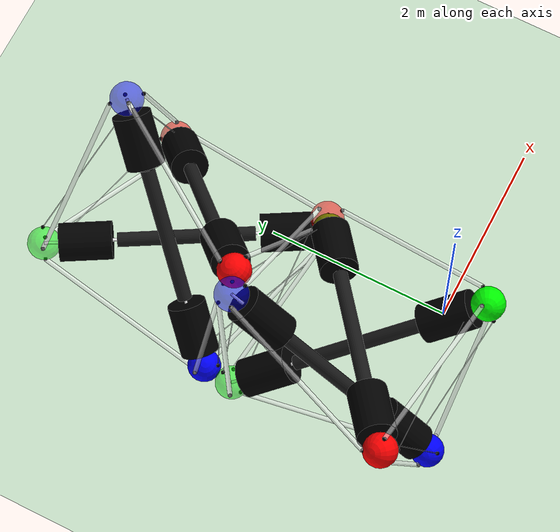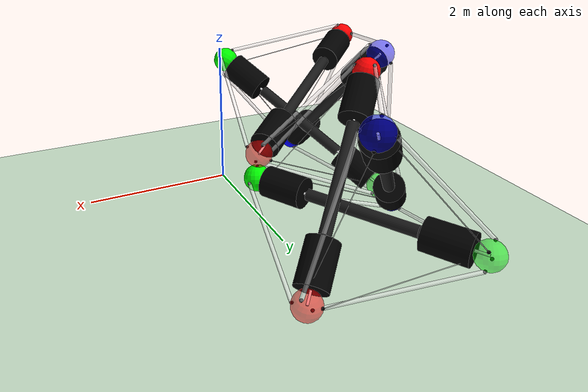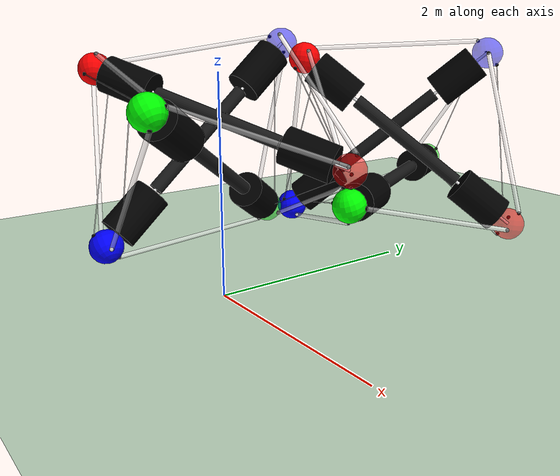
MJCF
<mujoco model="TT (v1.31)">
  <compiler angle="radian"/>

  <option timestep="0.01" cone="elliptic">
    <flag frictionloss="disable"/>
  </option>

  <visual>
    <global offwidth="1280" offheight="1280"/>
    <quality shadowsize="2048"/>
    <headlight ambient="0.4 0.4 0.4" diffuse="0.8 0.8 0.8" specular="0.1 0.1 0.1"/>
  </visual>

  <default>
    <geom size="0.014 0 0" condim="6" friction="1.2 0 0" solref="-5000 -50" rgba="0.75 0.75 0.75 1"/>
    <site size="0.02 0.005 0.005"/>

  <tendon stiffness="100000" damping="1000" springlength="1.5" width="0.005" rgba="1 1 1 0.5"/>
    <general ctrlrange="-100 0" dyntype="filter" gainprm="15000"/>
  </default>

  <asset>
    <texture type="skybox" colorspace="auto" name="skybox" builtin="gradient" mark="random" rgb1="0.4 0.6 0.8" rgb2="0 0 0" markrgb="1 1 1" width="800" height="4800"/>
    <texture type="2d" colorspace="auto" name="grid" builtin="checker" mark="edge" rgb1="0.1 0.2 0.3" rgb2="0.2 0.3 0.4" markrgb="0.2 0.3 0.4" width="300" height="300"/>
    <texture type="skybox" colorspace="auto" builtin="gradient" rgb1="1 1 1" rgb2="0 0 0" width="100" height="600"/>
    <texture type="cube" colorspace="auto" name="texgeom" builtin="flat" mark="cross" rgb1="0.8 0.6 0.4" rgb2="0.8 0.6 0.4" markrgb="1 1 1" width="127" height="762"/>
    <texture type="2d" colorspace="auto" name="texplane" builtin="checker" rgb1="0 0 0" rgb2="0.8 0.8 0.8" width="100" height="100"/>
    <material name="grid" texture="grid" texuniform="true"/>
    <material name="self" rgba="0.7 0.5 0.3 1"/>
    <material name="self_default" rgba="0.7 0.5 0.3 1"/>
    <material name="self_highlight" rgba="0 0.5 0.3 1"/>
    <material name="effector" rgba="0.7 0.4 0.2 1"/>
    <material name="effector_default" rgba="0.7 0.4 0.2 1"/>
    <material name="effector_highlight" rgba="0 0.5 0.3 1"/>
    <material name="decoration" rgba="0.3 0.5 0.7 1"/>
    <material name="eye" rgba="0 0.2 1 1"/>
    <material name="target" rgba="0.6 0.3 0.3 1"/>
    <material name="target_default" rgba="0.6 0.3 0.3 1"/>
    <material name="target_highlight" rgba="0.6 0.3 0.3 0.4"/>
    <material name="site" rgba="0.5 0.5 0.5 0.3"/>
    <material name="MatPlane" texture="texplane" texrepeat="30 30"/>
    <material name="geom" texture="texgeom" texuniform="true"/>
  </asset>

  <worldbody>
    <!-- Ground plane: removed duplicate geom and stray closing body tag that caused XML mismatch -->
    <geom name="floor" size="40 40 1" type="plane" material="grid" rgba="0.8 0.9 0.8 1" friction="1.0 0.12 0.025"/>
    <camera name="camera" pos="-1.707 -9.267 38.018" quat="0.992382 0.109445 -0.00620097 -0.0562269"/>
    <camera name="front" pos="10.257 -19.949 12.477" xyaxes="0.886 0.463 0.000 -0.225 0.430 0.875"/>
    <camera name="top" pos="0.392 -0.869 53.543" quat="0.999964 0.00849908 0 0"/>
    <light name="mylight" pos="0 0 6" dir="0 0 -1"/>
    <!-- World origin visual aids -->
    <site name="world_origin" pos="0 0 0" size="0.01" type="sphere" rgba="1 1 1 1"/>
    <geom name="x_axis" fromto="0 0 0 0.2 0 0" size="0.003" type="capsule" rgba="1 0 0 1" contype="0" conaffinity="0"/>
    <geom name="y_axis" fromto="0 0 0 0 0.2 0" size="0.003" type="capsule" rgba="0 1 0 1" contype="0" conaffinity="0"/>
    <geom name="z_axis" fromto="0 0 0 0 0 0.2" size="0.003" type="capsule" rgba="0 0 1 1" contype="0" conaffinity="0"/>
    <body name="t1_r01" pos="-1.063521 0.5686207 1.4399507" quat="0.811427 0.365542 -0.4552025 -0.0274943">
      <joint name="t1_move01" type="free"/>
      <geom name="t1_r01" size="0.0159 1.475" quat="1.02961e-09 -0.933251 0.359226 -9.46508e-10" type="cylinder" mass="6.5" rgba="1 1 1 1"/>
      <geom name="t1_s0" size="0.175" pos="3.69691e-09 1.83157e-09 -1.475" quat="0.815045 -0.454598 0.174983 0.313726" mass="15.1" rgba="1 0 0 0.5"/>
      <geom name="t1_s1" size="0.175" pos="-3.69691e-09 -1.83157e-09 1.475" quat="0.815045 -0.454598 0.174983 0.313726" mass="15.1" rgba="1 0 0 1"/>
      <geom name="t1_h01" size="0.075 0.715" quat="1.19879e-09 -0.933251 0.359226 3.09137e-09" type="cylinder" mass="90" rgba="0.1 0.1 0.1 1"/>
      <geom name="t1_b0" size="0.2 0.275" pos="-9.50917e-10 -1.3377e-09 -1.039" quat="2.96872e-09 -0.933251 0.359226 -2.79146e-09" type="cylinder" mass="58.1" rgba="0 0 0 1"/>
      <geom name="t1_b1" size="0.2 0.275" pos="9.50917e-10 1.3377e-09 1.039" quat="2.96872e-09 -0.933251 0.359226 -2.79146e-09" type="cylinder" mass="58.1" rgba="0 0 0 1"/>
      <site name="t1_s0" pos="3.69691e-09 1.83157e-09 -1.475" quat="0.815045 -0.454598 0.174983 0.313726" size="0.001" rgba="0 0 1 1"/>
      <site name="t1_s1" pos="-3.69691e-09 -1.83157e-09 1.475" quat="0.815045 -0.454598 0.174983 0.313726" size="0.001" rgba="0 0 1 1"/>
      <site name="t1_s_0_4" pos="0.0701671 0.160317 -1.475" quat="0.815045 -0.454598 0.174983 0.313726" rgba="0 0 0 1"/>
      <site name="t1_s_0_3" pos="0.160317 -0.0701671 -1.475" quat="0.815045 -0.454598 0.174983 0.313726" rgba="0 0 0 1"/>
      <site name="t1_s_0_2" pos="-0.0701671 -0.160317 -1.475" quat="0.815045 -0.454598 0.174983 0.313726" rgba="0 0 0 1"/>
      <site name="t1_s_0_b2" pos="-0.160317 0.0701671 -1.475" quat="0.815045 -0.454598 0.174983 0.313726" rgba="0 0 0 1"/>
      <site name="t1_s_b0_4" pos="0.0107106 0.174672 -1.25" quat="0.815045 -0.454598 0.174983 0.313726" rgba="0 0 0 1"/>
      <site name="t1_s_1_4" pos="-0.0783518 0.15648 1.475" quat="0.815045 -0.454598 0.174983 0.313726" rgba="0 0 0 1"/>
      <site name="t1_s_1_3" pos="0.15648 0.0783518 1.475" quat="0.815045 -0.454598 0.174983 0.313726" rgba="0 0 0 1"/>
      <site name="t1_s_1_b3" pos="0.0783518 -0.15648 1.475" quat="0.815045 -0.454598 0.174983 0.313726" rgba="0 0 0 1"/>
      <site name="t1_s_1_5" pos="-0.15648 -0.0783518 1.475" quat="0.815045 -0.454598 0.174983 0.313726" rgba="0 0 0 1"/>
      <site name="t1_s_b1_5" pos="-0.119125 -0.128196 1.25" quat="0.815045 -0.454598 0.174983 0.313726" rgba="0 0 0 1"/>
    </body>

    <body name="t1_r23" pos="-1.0159419 0.5331617 0.9333615" quat="0.704862 0.5016129 -0.0093226 0.5014651">
      <joint name="t1_move23" type="free"/>
      <geom name="t1_r23" size="0.0159 1.475" quat="-4.35483e-10 -0.967935 -0.251202 -5.83827e-10" type="cylinder" mass="6.5" rgba="1 1 1 1"/>
      <geom name="t1_s2" size="0.175" pos="1.98978e-09 -8.1084e-10 -1.475" quat="0.75122 -0.610382 -0.158409 -0.194959" mass="15.1" rgba="0 1 0 0.5"/>
      <geom name="t1_s3" size="0.175" pos="-1.98978e-09 8.1084e-10 1.475" quat="0.75122 -0.610382 -0.158409 -0.194959" mass="15.1" rgba="0 1 0 1"/>
      <geom name="t1_h23" size="0.075 0.715" quat="-1.43979e-09 -0.967935 -0.251202 2.94687e-09" type="cylinder" mass="90" rgba="0.1 0.1 0.1 1"/>
      <geom name="t1_b2" size="0.2 0.275" pos="-1.91631e-10 9.22312e-10 -1.039" quat="-2.39459e-09 -0.967935 -0.251202 -5.21693e-10" type="cylinder" mass="58.1" rgba="0 0 0 1"/>
      <geom name="t1_b3" size="0.2 0.275" pos="1.91631e-10 -9.22312e-10 1.039" quat="-2.39459e-09 -0.967935 -0.251202 -5.21693e-10" type="cylinder" mass="58.1" rgba="0 0 0 1"/>
      <site name="t1_s2" pos="1.98978e-09 -8.1084e-10 -1.475" quat="0.75122 -0.610382 -0.158409 -0.194959" size="0.001" rgba="0 1 0 1"/>
      <site name="t1_s3" pos="-1.98978e-09 8.1084e-10 1.475" quat="0.75122 -0.610382 -0.158409 -0.194959" size="0.001" rgba="0 1 0 1"/>
      <site name="t1_s_2_4" pos="-0.0850506 0.152942 -1.475" quat="0.75122 -0.610382 -0.158409 -0.194959" rgba="0 0 0 1"/>
      <site name="t1_s_2_b4" pos="0.152942 0.0850506 -1.475" quat="0.75122 -0.610382 -0.158409 -0.194959" rgba="0 0 0 1"/>
      <site name="t1_s_2_0" pos="0.0850506 -0.152942 -1.475" quat="0.75122 -0.610382 -0.158409 -0.194959" rgba="0 0 0 1"/>
      <site name="t1_s_b2_0" pos="0.123401 -0.124085 -1.25" quat="0.75122 -0.610382 -0.158409 -0.194959" rgba="0 0 0 1"/>
      <site name="t1_s_2_5" pos="-0.152942 -0.0850506 -1.475" quat="0.75122 -0.610382 -0.158409 -0.194959" rgba="0 0 0 1"/>
      <site name="t1_s_3_1" pos="0.0472796 0.168492 1.475" quat="0.75122 -0.610382 -0.158409 -0.194959" rgba="0 0 0 1"/>
      <site name="t1_s_b3_1" pos="-0.0343533 0.171595 1.25" quat="0.75122 -0.610382 -0.158409 -0.194959" rgba="0 0 0 1"/>
      <site name="t1_s_3_0" pos="0.168492 -0.0472796 1.475" quat="0.75122 -0.610382 -0.158409 -0.194959" rgba="0 0 0 1"/>
      <site name="t1_s_3_5" pos="-0.0472796 -0.168492 1.475" quat="0.75122 -0.610382 -0.158409 -0.194959" rgba="0 0 0 1"/>
      <site name="t1_s_3_b5" pos="-0.168492 0.0472796 1.475" quat="0.75122 -0.610382 -0.158409 -0.194959" rgba="0 0 0 1"/>
    </body>
    <body name="t1_r45" pos="-1.4870355 0.5757972 1.1645339" quat="0.177383 0.4134729 -0.8152177 0.3646855">
      <joint name="t1_move45" type="free"/>
      <geom name="t1_r45" size="0.0159 1.475" quat="1.95914e-11 -0.622854 0.782338 -9.94874e-10" type="cylinder" mass="6.5" rgba="1 1 1 1"/>
      <geom name="t1_s4" size="0.175" pos="1.87322e-09 -2.26007e-09 -1.475" quat="0.464921 -0.532774 0.669192 -0.228434" mass="15.1" rgba="0 0 1 0.5"/>
      <geom name="t1_s5" size="0.175" pos="-1.87322e-09 2.26007e-09 1.475" quat="0.464921 -0.532774 0.669192 -0.228434" mass="15.1" rgba="0 0 1 1"/>
      <geom name="t1_h45" size="0.075 0.715" quat="4.74452e-10 -0.622854 0.782338 -2.08275e-09" type="cylinder" mass="90" rgba="0.1 0.1 0.1 1"/>
      <geom name="t1_b4" size="0.2 0.275" pos="-1.03465e-09 1.12983e-09 -1.039" quat="-1.25256e-09 -0.622854 0.782338 5.36179e-09" type="cylinder" mass="58.1" rgba="0 0 0 1"/>
      <geom name="t1_b5" size="0.2 0.275" pos="1.03465e-09 -1.12983e-09 1.039" quat="-1.25256e-09 -0.622854 0.782338 5.36179e-09" type="cylinder" mass="58.1" rgba="0 0 0 1"/>
      <site name="t1_s4" pos="1.87322e-09 -2.26007e-09 -1.475" quat="0.464921 -0.532774 0.669192 -0.228434" size="0.001" rgba="1 0 0 1"/>
      <site name="t1_s5" pos="-1.87322e-09 2.26007e-09 1.475" quat="0.464921 -0.532774 0.669192 -0.228434" size="0.001" rgba="1 0 0 1"/>
      <site name="t1_s_4_1" pos="0.166088 0.0551331 -1.475" quat="0.464921 -0.532774 0.669192 -0.228434" rgba="0 0 0 1"/>
      <site name="t1_s_4_0" pos="0.0551331 -0.166088 -1.475" quat="0.464921 -0.532774 0.669192 -0.228434" rgba="0 0 0 1"/>
      <site name="t1_s_4_2" pos="-0.0551331 0.166088 -1.475" quat="0.464921 -0.532774 0.669192 -0.228434" rgba="0 0 0 1"/>
      <site name="t1_s_b4_2" pos="-0.0910059 0.149476 -1.25" quat="0.464921 -0.532774 0.669192 -0.228434" rgba="0 0 0 1"/>
      <site name="t1_s_4_b0" pos="-0.166088 -0.0551331 -1.475" quat="0.464921 -0.532774 0.669192 -0.228434" rgba="0 0 0 1"/>
      <site name="t1_s_5_1" pos="0.0855044 0.152689 1.475" quat="0.464921 -0.532774 0.669192 -0.228434" rgba="0 0 0 1"/>
      <site name="t1_s_5_b1" pos="0.152689 -0.0855044 1.475" quat="0.464921 -0.532774 0.669192 -0.228434" rgba="0 0 0 1"/>
      <site name="t1_s_5_3" pos="-0.0855044 -0.152689 1.475" quat="0.464921 -0.532774 0.669192 -0.228434" rgba="1 1 1 1"/>
      <site name="t1_s_b5_3" pos="-0.022702 -0.173521 1.25" quat="0.464921 -0.532774 0.669192 -0.228434" rgba="0 0 0 1"/>
      <site name="t1_s_5_2" pos="-0.152689 0.0855044 1.475" quat="0.464921 -0.532774 0.669192 -0.228434" rgba="0 0 0 1"/>
    </body>
    <body name="t2_r01" pos="-0.3877848 2.591109 1.0856365" quat="0.8613888 0.3800969 -0.2148207 -0.2595915">
      <joint name="t2_move01" type="free"/>
      <geom name="t2_r01" size="0.0159 1.475" quat="1.02961e-09 -0.933251 0.359226 -9.46508e-10" type="cylinder" mass="6.5" rgba="1 1 1 1"/>
      <geom name="t2_s0" size="0.175" pos="3.69691e-09 1.83157e-09 -1.475" quat="0.815045 -0.454598 0.174983 0.313726" mass="15.1" rgba="1 0 0 0.5"/>
      <geom name="t2_s1" size="0.175" pos="-3.69691e-09 -1.83157e-09 1.475" quat="0.815045 -0.454598 0.174983 0.313726" mass="15.1" rgba="1 0 0 1"/>
      <geom name="t2_h01" size="0.075 0.715" quat="1.19879e-09 -0.933251 0.359226 3.09137e-09" type="cylinder" mass="90" rgba="0.1 0.1 0.1 1"/>
      <geom name="t2_b0" size="0.2 0.275" pos="-9.50917e-10 -1.3377e-09 -1.039" quat="2.96872e-09 -0.933251 0.359226 -2.79146e-09" type="cylinder" mass="58.1" rgba="0 0 0 1"/>
      <geom name="t2_b1" size="0.2 0.275" pos="9.50917e-10 1.3377e-09 1.039" quat="2.96872e-09 -0.933251 0.359226 -2.79146e-09" type="cylinder" mass="58.1" rgba="0 0 0 1"/>
      <site name="t2_s0" pos="3.69691e-09 1.83157e-09 -1.475" quat="0.815045 -0.454598 0.174983 0.313726" size="0.001" rgba="0 0 1 1"/>
      <site name="t2_s1" pos="-3.69691e-09 -1.83157e-09 1.475" quat="0.815045 -0.454598 0.174983 0.313726" size="0.001" rgba="0 0 1 1"/>
      <site name="t2_s_0_4" pos="0.0701671 0.160317 -1.475" quat="0.815045 -0.454598 0.174983 0.313726" rgba="0 0 0 1"/>
      <site name="t2_s_0_3" pos="0.160317 -0.0701671 -1.475" quat="0.815045 -0.454598 0.174983 0.313726" rgba="0 0 0 1"/>
      <site name="t2_s_0_2" pos="-0.0701671 -0.160317 -1.475" quat="0.815045 -0.454598 0.174983 0.313726" rgba="0 0 0 1"/>
      <site name="t2_s_0_b2" pos="-0.160317 0.0701671 -1.475" quat="0.815045 -0.454598 0.174983 0.313726" rgba="0 0 0 1"/>
      <site name="t2_s_b0_4" pos="0.0107106 0.174672 -1.25" quat="0.815045 -0.454598 0.174983 0.313726" rgba="0 0 0 1"/>
      <site name="t2_s_1_4" pos="-0.0783518 0.15648 1.475" quat="0.815045 -0.454598 0.174983 0.313726" rgba="0 0 0 1"/>
      <site name="t2_s_1_3" pos="0.15648 0.0783518 1.475" quat="0.815045 -0.454598 0.174983 0.313726" rgba="0 0 0 1"/>
      <site name="t2_s_1_b3" pos="0.0783518 -0.15648 1.475" quat="0.815045 -0.454598 0.174983 0.313726" rgba="0 0 0 1"/>
      <site name="t2_s_1_5" pos="-0.15648 -0.0783518 1.475" quat="0.815045 -0.454598 0.174983 0.313726" rgba="0 0 0 1"/>
      <site name="t2_s_b1_5" pos="-0.119125 -0.128196 1.25" quat="0.815045 -0.454598 0.174983 0.313726" rgba="0 0 0 1"/>
    </body>
    <body name="t2_r23" pos="-0.6591613 2.6710632 0.6060977" quat="0.6631789 0.6954331 0.105096 0.2559713">
      <joint name="t2_move23" type="free"/>
      <geom name="t2_r23" size="0.0159 1.475" quat="-4.35483e-10 -0.967935 -0.251202 -5.83827e-10" type="cylinder" mass="6.5" rgba="1 1 1 1"/>
      <geom name="t2_s2" size="0.175" pos="1.98978e-09 -8.1084e-10 -1.475" quat="0.75122 -0.610382 -0.158409 -0.194959" mass="15.1" rgba="0 1 0 0.5"/>
      <geom name="t2_s3" size="0.175" pos="-1.98978e-09 8.1084e-10 1.475" quat="0.75122 -0.610382 -0.158409 -0.194959" mass="15.1" rgba="0 1 0 1"/>
      <geom name="t2_h23" size="0.075 0.715" quat="-1.43979e-09 -0.967935 -0.251202 2.94687e-09" type="cylinder" mass="90" rgba="0.1 0.1 0.1 1"/>
      <geom name="t2_b2" size="0.2 0.275" pos="-1.91631e-10 9.22312e-10 -1.039" quat="-2.39459e-09 -0.967935 -0.251202 -5.21693e-10" type="cylinder" mass="58.1" rgba="0 0 0 1"/>
      <geom name="t2_b3" size="0.2 0.275" pos="1.91631e-10 -9.22312e-10 1.039" quat="-2.39459e-09 -0.967935 -0.251202 -5.21693e-10" type="cylinder" mass="58.1" rgba="0 0 0 1"/>
      <site name="t2_s2" pos="1.98978e-09 -8.1084e-10 -1.475" quat="0.75122 -0.610382 -0.158409 -0.194959" size="0.001" rgba="0 1 0 1"/>
      <site name="t2_s3" pos="-1.98978e-09 8.1084e-10 1.475" quat="0.75122 -0.610382 -0.158409 -0.194959" size="0.001" rgba="0 1 0 1"/>
      <site name="t2_s_2_4" pos="-0.0850506 0.152942 -1.475" quat="0.75122 -0.610382 -0.158409 -0.194959" rgba="0 0 0 1"/>
      <site name="t2_s_2_b4" pos="0.152942 0.0850506 -1.475" quat="0.75122 -0.610382 -0.158409 -0.194959" rgba="0 0 0 1"/>
      <site name="t2_s_2_0" pos="0.0850506 -0.152942 -1.475" quat="0.75122 -0.610382 -0.158409 -0.194959" rgba="0 0 0 1"/>
      <site name="t2_s_b2_0" pos="0.123401 -0.124085 -1.25" quat="0.75122 -0.610382 -0.158409 -0.194959" rgba="0 0 0 1"/>
      <site name="t2_s_2_5" pos="-0.152942 -0.0850506 -1.475" quat="0.75122 -0.610382 -0.158409 -0.194959" rgba="0 0 0 1"/>
      <site name="t2_s_3_1" pos="0.0472796 0.168492 1.475" quat="0.75122 -0.610382 -0.158409 -0.194959" rgba="0 0 0 1"/>
      <site name="t2_s_b3_1" pos="-0.0343533 0.171595 1.25" quat="0.75122 -0.610382 -0.158409 -0.194959" rgba="0 0 0 1"/>
      <site name="t2_s_3_0" pos="0.168492 -0.0472796 1.475" quat="0.75122 -0.610382 -0.158409 -0.194959" rgba="0 0 0 1"/>
      <site name="t2_s_3_5" pos="-0.0472796 -0.168492 1.475" quat="0.75122 -0.610382 -0.158409 -0.194959" rgba="0 0 0 1"/>
      <site name="t2_s_3_b5" pos="-0.168492 0.0472796 1.475" quat="0.75122 -0.610382 -0.158409 -0.194959" rgba="0 0 0 1"/>
    </body>
    <body name="t2_r45" pos="-0.9024866 2.7534703 1.1102422" quat="0.4129638 0.46244 -0.7765708 0.1120177">
      <joint name="t2_move45" type="free"/>
      <geom name="t2_r45" size="0.0159 1.475" quat="1.95914e-11 -0.622854 0.782338 -9.94874e-10" type="cylinder" mass="6.5" rgba="1 1 1 1"/>
      <geom name="t2_s4" size="0.175" pos="1.87322e-09 -2.26007e-09 -1.475" quat="0.464921 -0.532774 0.669192 -0.228434" mass="15.1" rgba="0 0 1 0.5"/>
      <geom name="t2_s5" size="0.175" pos="-1.87322e-09 2.26007e-09 1.475" quat="0.464921 -0.532774 0.669192 -0.228434" mass="15.1" rgba="0 0 1 1"/>
      <geom name="t2_h45" size="0.075 0.715" quat="4.74452e-10 -0.622854 0.782338 -2.08275e-09" type="cylinder" mass="90" rgba="0.1 0.1 0.1 1"/>
      <geom name="t2_b4" size="0.2 0.275" pos="-1.03465e-09 1.12983e-09 -1.039" quat="-1.25256e-09 -0.622854 0.782338 5.36179e-09" type="cylinder" mass="58.1" rgba="0 0 0 1"/>
      <geom name="t2_b5" size="0.2 0.275" pos="1.03465e-09 -1.12983e-09 1.039" quat="-1.25256e-09 -0.622854 0.782338 5.36179e-09" type="cylinder" mass="58.1" rgba="0 0 0 1"/>
      <site name="t2_s4" pos="1.87322e-09 -2.26007e-09 -1.475" quat="0.464921 -0.532774 0.669192 -0.228434" size="0.001" rgba="1 0 0 1"/>
      <site name="t2_s5" pos="-1.87322e-09 2.26007e-09 1.475" quat="0.464921 -0.532774 0.669192 -0.228434" size="0.001" rgba="1 0 0 1"/>
      <site name="t2_s_4_1" pos="0.166088 0.0551331 -1.475" quat="0.464921 -0.532774 0.669192 -0.228434" rgba="0 0 0 1"/>
      <site name="t2_s_4_0" pos="0.0551331 -0.166088 -1.475" quat="0.464921 -0.532774 0.669192 -0.228434" rgba="0 0 0 1"/>
      <site name="t2_s_4_2" pos="-0.0551331 0.166088 -1.475" quat="0.464921 -0.532774 0.669192 -0.228434" rgba="0 0 0 1"/>
      <site name="t2_s_b4_2" pos="-0.0910059 0.149476 -1.25" quat="0.464921 -0.532774 0.669192 -0.228434" rgba="0 0 0 1"/>
      <site name="t2_s_4_b0" pos="-0.166088 -0.0551331 -1.475" quat="0.464921 -0.532774 0.669192 -0.228434" rgba="0 0 0 1"/>
      <site name="t2_s_5_1" pos="0.0855044 0.152689 1.475" quat="0.464921 -0.532774 0.669192 -0.228434" rgba="0 0 0 1"/>
      <site name="t2_s_5_b1" pos="0.152689 -0.0855044 1.475" quat="0.464921 -0.532774 0.669192 -0.228434" rgba="0 0 0 1"/>
      <site name="t2_s_5_3" pos="-0.0855044 -0.152689 1.475" quat="0.464921 -0.532774 0.669192 -0.228434" rgba="1 1 1 1"/>
      <site name="t2_s_b5_3" pos="-0.022702 -0.173521 1.25" quat="0.464921 -0.532774 0.669192 -0.228434" rgba="0 0 0 1"/>
      <site name="t2_s_5_2" pos="-0.152689 0.0855044 1.475" quat="0.464921 -0.532774 0.669192 -0.228434" rgba="0 0 0 1"/>
    </body>
  </worldbody>

  <tendon>
    <spatial name="t1_td_0" rgba="0.6 0.6 0.6 0.5">
      <site site="t1_s_3_b5"/>
      <site site="t1_s_b5_3"/>
    </spatial>
    <spatial name="t1_td_1" rgba="0.6 0.6 0.6 0.5">
      <site site="t1_s_1_b3"/>
      <site site="t1_s_b3_1"/>
    </spatial>
    <spatial name="t1_td_2" rgba="0.6 0.6 0.6 0.5">
      <site site="t1_s_5_b1"/>
      <site site="t1_s_b1_5"/>
    </spatial>
    <spatial name="t1_td_3" rgba="0.6 0.6 0.6 0.5">
      <site site="t1_s_0_b2"/>
      <site site="t1_s_b2_0"/>
    </spatial>
    <spatial name="t1_td_4" rgba="0.6 0.6 0.6 0.5">
      <site site="t1_s_4_b0"/>
      <site site="t1_s_b0_4"/>
    </spatial>
    <spatial name="t1_td_5" rgba="0.6 0.6 0.6 0.5">
      <site site="t1_s_2_b4"/>
      <site site="t1_s_b4_2"/>
    </spatial>
    <spatial name="t1_td_6" stiffness="1000" springlength="0.65" width="0.025">
      <site site="t1_s_3_5"/>
      <site site="t1_s_5_3"/>
    </spatial>
    <spatial name="t1_td_7" stiffness="1000" springlength="0.65" width="0.025">
      <site site="t1_s_1_3"/>
      <site site="t1_s_3_1"/>
    </spatial>
    <spatial name="t1_td_8" stiffness="1000" springlength="0.65" width="0.025">
      <site site="t1_s_1_5"/>
      <site site="t1_s_5_1"/>
    </spatial>
    <spatial name="t1_td_9" stiffness="1000" springlength="0.65" width="0.025">
      <site site="t1_s_0_2"/>
      <site site="t1_s_2_0"/>
    </spatial>
    <spatial name="t1_td_10" stiffness="1000" springlength="0.65" width="0.025">
      <site site="t1_s_0_4"/>
      <site site="t1_s_4_0"/>
    </spatial>
    <spatial name="t1_td_11" stiffness="1000" springlength="0.65" width="0.025">
      <site site="t1_s_2_4"/>
      <site site="t1_s_4_2"/>
    </spatial>
    <spatial name="t1_td_12" stiffness="20000" springlength="1.3" width="0.025">
      <site site="t1_s_2_5"/>
      <site site="t1_s_5_2"/>
    </spatial>
    <spatial name="t1_td_13" stiffness="20000" springlength="1.3" width="0.025">
      <site site="t1_s_0_3"/>
      <site site="t1_s_3_0"/>
    </spatial>
    <spatial name="t1_td_14" stiffness="20000" springlength="1.3" width="0.025">
      <site site="t1_s_1_4"/>
      <site site="t1_s_4_1"/>
    </spatial>
    <spatial name="t2_td_0" rgba="0.6 0.6 0.6 0.5">
      <site site="t2_s_3_b5"/>
      <site site="t2_s_b5_3"/>
    </spatial>
    <spatial name="t2_td_1" rgba="0.6 0.6 0.6 0.5">
      <site site="t2_s_1_b3"/>
      <site site="t2_s_b3_1"/>
    </spatial>
    <spatial name="t2_td_2" rgba="0.6 0.6 0.6 0.5">
      <site site="t2_s_5_b1"/>
      <site site="t2_s_b1_5"/>
    </spatial>
    <spatial name="t2_td_3" rgba="0.6 0.6 0.6 0.5">
      <site site="t2_s_0_b2"/>
      <site site="t2_s_b2_0"/>
    </spatial>
    <spatial name="t2_td_4" rgba="0.6 0.6 0.6 0.5">
      <site site="t2_s_4_b0"/>
      <site site="t2_s_b0_4"/>
    </spatial>
    <spatial name="t2_td_5" rgba="0.6 0.6 0.6 0.5">
      <site site="t2_s_2_b4"/>
      <site site="t2_s_b4_2"/>
    </spatial>
    <spatial name="t2_td_6" stiffness="1000" springlength="0.65" width="0.025">
      <site site="t2_s_3_5"/>
      <site site="t2_s_5_3"/>
    </spatial>
    <spatial name="t2_td_7" stiffness="1000" springlength="0.65" width="0.025">
      <site site="t2_s_1_3"/>
      <site site="t2_s_3_1"/>
    </spatial>
    <spatial name="t2_td_8" stiffness="1000" springlength="0.65" width="0.025">
      <site site="t2_s_1_5"/>
      <site site="t2_s_5_1"/>
    </spatial>
    <spatial name="t2_td_9" stiffness="1000" springlength="0.65" width="0.025">
      <site site="t2_s_0_2"/>
      <site site="t2_s_2_0"/>
    </spatial>
    <spatial name="t2_td_10" stiffness="1000" springlength="0.65" width="0.025">
      <site site="t2_s_0_4"/>
      <site site="t2_s_4_0"/>
    </spatial>
    <spatial name="t2_td_11" stiffness="1000" springlength="0.65" width="0.025">
      <site site="t2_s_2_4"/>
      <site site="t2_s_4_2"/>
    </spatial>
    <spatial name="t2_td_12" stiffness="20000" springlength="1.3" width="0.025">
      <site site="t2_s_2_5"/>
      <site site="t2_s_5_2"/>
    </spatial>
    <spatial name="t2_td_13" stiffness="20000" springlength="1.3" width="0.025">
      <site site="t2_s_0_3"/>
      <site site="t2_s_3_0"/>
    </spatial>
    <spatial name="t2_td_14" stiffness="20000" springlength="1.3" width="0.025">
      <site site="t2_s_1_4"/>
      <site site="t2_s_4_1"/>
    </spatial>

   <spatial name="connect0" stiffness="100000" springlength="0.005">
     <site site="t2_s1"/>
     <site site="t1_s4"/>
   </spatial>
   <spatial name="connect1" stiffness="100000" springlength="0.005">
     <site site="t2_s5"/>
     <site site="t1_s2"/>
   </spatial>
   <spatial name="connect2" stiffness="100000" springlength="0.005">
     <site site="t2_s3"/>
     <site site="t1_s0"/>
    </spatial>
  </tendon>

  <sensor>
    <framepos objtype="site" objname="t1_s0" name="pos_t1_s0"/>
    <framepos objtype="site" objname="t1_s1" name="pos_t1_s1"/>
    <framepos objtype="site" objname="t1_s2" name="pos_t1_s2"/>
    <framepos objtype="site" objname="t1_s3" name="pos_t1_s3"/>
    <framepos objtype="site" objname="t1_s4" name="pos_t1_s4"/>
    <framepos objtype="site" objname="t1_s5" name="pos_t1_s5"/>
    <framepos objtype="site" objname="t1_s_0_4" name="pos_t1_s_0_4"/>
    <framepos objtype="site" objname="t1_s_0_3" name="pos_t1_s_0_3"/>
    <framepos objtype="site" objname="t1_s_0_2" name="pos_t1_s_0_2"/>
    <framepos objtype="site" objname="t1_s_b0_4" name="pos_t1_s_b0_4"/>
    <framepos objtype="site" objname="t1_s_0_b2" name="pos_t1_s_0_b2"/>
    <framepos objtype="site" objname="t1_s_1_4" name="pos_t1_s_1_4"/>
    <framepos objtype="site" objname="t1_s_1_3" name="pos_t1_s_1_3"/>
    <framepos objtype="site" objname="t1_s_1_5" name="pos_t1_s_1_5"/>
    <framepos objtype="site" objname="t1_s_1_b3" name="pos_t1_s_1_b3"/>
    <framepos objtype="site" objname="t1_s_b1_5" name="pos_t1_s_b1_5"/>
    <framepos objtype="site" objname="t1_s_2_4" name="pos_t1_s_2_4"/>
    <framepos objtype="site" objname="t1_s_2_0" name="pos_t1_s_2_0"/>
    <framepos objtype="site" objname="t1_s_2_5" name="pos_t1_s_2_5"/>
    <framepos objtype="site" objname="t1_s_b2_0" name="pos_t1_s_b2_0"/>
    <framepos objtype="site" objname="t1_s_2_b4" name="pos_t1_s_2_b4"/>
    <framepos objtype="site" objname="t1_s_3_1" name="pos_t1_s_3_1"/>
    <framepos objtype="site" objname="t1_s_3_0" name="pos_t1_s_3_0"/>
    <framepos objtype="site" objname="t1_s_3_5" name="pos_t1_s_3_5"/>
    <framepos objtype="site" objname="t1_s_3_b5" name="pos_t1_s_3_b5"/>
    <framepos objtype="site" objname="t1_s_b3_1" name="pos_t1_s_b3_1"/>
    <framepos objtype="site" objname="t1_s_4_1" name="pos_t1_s_4_1"/>
    <framepos objtype="site" objname="t1_s_4_0" name="pos_t1_s_4_0"/>
    <framepos objtype="site" objname="t1_s_4_2" name="pos_t1_s_4_2"/>
    <framepos objtype="site" objname="t1_s_4_b0" name="pos_t1_s_4_b0"/>
    <framepos objtype="site" objname="t1_s_b4_2" name="pos_t1_s_b4_2"/>
    <framepos objtype="site" objname="t1_s_5_1" name="pos_t1_s_5_1"/>
    <framepos objtype="site" objname="t1_s_5_3" name="pos_t1_s_5_3"/>
    <framepos objtype="site" objname="t1_s_5_2" name="pos_t1_s_5_2"/>
    <framepos objtype="site" objname="t1_s_5_b1" name="pos_t1_s_5_b1"/>
    <framepos objtype="site" objname="t1_s_b5_3" name="pos_t1_s_b5_3"/>
    <framelinvel objtype="site" objname="t1_s0" name="linvel_t1_s0"/>
    <framelinvel objtype="site" objname="t1_s1" name="linvel_t1_s1"/>
    <framelinvel objtype="site" objname="t1_s2" name="linvel_t1_s2"/>
    <framelinvel objtype="site" objname="t1_s3" name="linvel_t1_s3"/>
    <framelinvel objtype="site" objname="t1_s4" name="linvel_t1_s4"/>
    <framelinvel objtype="site" objname="t1_s5" name="linvel_t1_s5"/>
    <framelinvel objtype="site" objname="t1_s_0_4" name="linvel_t1_s_0_4"/>
    <framelinvel objtype="site" objname="t1_s_0_3" name="linvel_t1_s_0_3"/>
    <framelinvel objtype="site" objname="t1_s_0_2" name="linvel_t1_s_0_2"/>
    <framelinvel objtype="site" objname="t1_s_1_4" name="linvel_t1_s_1_4"/>
    <framelinvel objtype="site" objname="t1_s_1_3" name="linvel_t1_s_1_3"/>
    <framelinvel objtype="site" objname="t1_s_1_5" name="linvel_t1_s_1_5"/>
    <framelinvel objtype="site" objname="t1_s_2_4" name="linvel_t1_s_2_4"/>
    <framelinvel objtype="site" objname="t1_s_2_0" name="linvel_t1_s_2_0"/>
    <framelinvel objtype="site" objname="t1_s_2_5" name="linvel_t1_s_2_5"/>
    <framelinvel objtype="site" objname="t1_s_3_1" name="linvel_t1_s_3_1"/>
    <framelinvel objtype="site" objname="t1_s_3_0" name="linvel_t1_s_3_0"/>
    <framelinvel objtype="site" objname="t1_s_3_5" name="linvel_t1_s_3_5"/>
    <framelinvel objtype="site" objname="t1_s_4_1" name="linvel_t1_s_4_1"/>
    <framelinvel objtype="site" objname="t1_s_4_0" name="linvel_t1_s_4_0"/>
    <framelinvel objtype="site" objname="t1_s_4_2" name="linvel_t1_s_4_2"/>
    <framelinvel objtype="site" objname="t1_s_5_1" name="linvel_t1_s_5_1"/>
    <framelinvel objtype="site" objname="t1_s_5_3" name="linvel_t1_s_5_3"/>
    <framelinvel objtype="site" objname="t1_s_5_2" name="linvel_t1_s_5_2"/>
    <framelinacc objtype="site" objname="t1_s0" name="linacc_t1_s0"/>
    <framelinacc objtype="site" objname="t1_s1" name="linacc_t1_s1"/>
    <framelinacc objtype="site" objname="t1_s2" name="linacc_t1_s2"/>
    <framelinacc objtype="site" objname="t1_s3" name="linacc_t1_s3"/>
    <framelinacc objtype="site" objname="t1_s4" name="linacc_t1_s4"/>
    <framelinacc objtype="site" objname="t1_s5" name="linacc_t1_s5"/>
    <framelinacc objtype="site" objname="t1_s_0_4" name="linacc_t1_s_0_4"/>
    <framelinacc objtype="site" objname="t1_s_0_3" name="linacc_t1_s_0_3"/>
    <framelinacc objtype="site" objname="t1_s_0_2" name="linacc_t1_s_0_2"/>
    <framelinacc objtype="site" objname="t1_s_1_4" name="linacc_t1_s_1_4"/>
    <framelinacc objtype="site" objname="t1_s_1_3" name="linacc_t1_s_1_3"/>
    <framelinacc objtype="site" objname="t1_s_1_5" name="linacc_t1_s_1_5"/>
    <framelinacc objtype="site" objname="t1_s_2_4" name="linacc_t1_s_2_4"/>
    <framelinacc objtype="site" objname="t1_s_2_0" name="linacc_t1_s_2_0"/>
    <framelinacc objtype="site" objname="t1_s_2_5" name="linacc_t1_s_2_5"/>
    <framelinacc objtype="site" objname="t1_s_3_1" name="linacc_t1_s_3_1"/>
    <framelinacc objtype="site" objname="t1_s_3_0" name="linacc_t1_s_3_0"/>
    <framelinacc objtype="site" objname="t1_s_3_5" name="linacc_t1_s_3_5"/>
    <framelinacc objtype="site" objname="t1_s_4_1" name="linacc_t1_s_4_1"/>
    <framelinacc objtype="site" objname="t1_s_4_0" name="linacc_t1_s_4_0"/>
    <framelinacc objtype="site" objname="t1_s_4_2" name="linacc_t1_s_4_2"/>
    <framelinacc objtype="site" objname="t1_s_5_1" name="linacc_t1_s_5_1"/>
    <framelinacc objtype="site" objname="t1_s_5_3" name="linacc_t1_s_5_3"/>
    <framelinacc objtype="site" objname="t1_s_5_2" name="linacc_t1_s_5_2"/>
    <framelinacc objtype="geom" objname="t1_r01" name="linacc_t1_r01"/>
    <frameangacc objtype="geom" objname="t1_r01" name="angacc_t1_r01"/>
    <framepos objtype="geom" objname="t1_r01" name="pos_t1_r01"/>
    <framelinvel objtype="geom" objname="t1_r01" name="linvel_t1_r01"/>
    <frameangvel objtype="geom" objname="t1_r01" name="angvel_t1_r01"/>
    <framequat objtype="geom" objname="t1_r01" name="quat_t1_r01"/>
    <framelinacc objtype="geom" objname="t1_r23" name="linacc_t1_r23"/>
    <frameangacc objtype="geom" objname="t1_r23" name="angacc_t1_r23"/>
    <framepos objtype="geom" objname="t1_r23" name="pos_t1_r23"/>
    <framelinvel objtype="geom" objname="t1_r23" name="linvel_t1_r23"/>
    <frameangvel objtype="geom" objname="t1_r23" name="angvel_t1_r23"/>
    <framequat objtype="geom" objname="t1_r23" name="quat_t1_r23"/>
    <framelinacc objtype="geom" objname="t1_r45" name="linacc_t1_r45"/>
    <frameangacc objtype="geom" objname="t1_r45" name="angacc_t1_r45"/>
    <framepos objtype="geom" objname="t1_r45" name="pos_t1_r45"/>
    <framelinvel objtype="geom" objname="t1_r45" name="linvel_t1_r45"/>
    <frameangvel objtype="geom" objname="t1_r45" name="angvel_t1_r45"/>
    <framequat objtype="geom" objname="t1_r45" name="quat_t1_r45"/>
    <framepos objtype="site" objname="t2_s0" name="pos_t2_s0"/>
    <framepos objtype="site" objname="t2_s1" name="pos_t2_s1"/>
    <framepos objtype="site" objname="t2_s2" name="pos_t2_s2"/>
    <framepos objtype="site" objname="t2_s3" name="pos_t2_s3"/>
    <framepos objtype="site" objname="t2_s4" name="pos_t2_s4"/>
    <framepos objtype="site" objname="t2_s5" name="pos_t2_s5"/>
    <framepos objtype="site" objname="t2_s_0_4" name="pos_t2_s_0_4"/>
    <framepos objtype="site" objname="t2_s_0_3" name="pos_t2_s_0_3"/>
    <framepos objtype="site" objname="t2_s_0_2" name="pos_t2_s_0_2"/>
    <framepos objtype="site" objname="t2_s_b0_4" name="pos_t2_s_b0_4"/>
    <framepos objtype="site" objname="t2_s_0_b2" name="pos_t2_s_0_b2"/>
    <framepos objtype="site" objname="t2_s_1_4" name="pos_t2_s_1_4"/>
    <framepos objtype="site" objname="t2_s_1_3" name="pos_t2_s_1_3"/>
    <framepos objtype="site" objname="t2_s_1_5" name="pos_t2_s_1_5"/>
    <framepos objtype="site" objname="t2_s_1_b3" name="pos_t2_s_1_b3"/>
    <framepos objtype="site" objname="t2_s_b1_5" name="pos_t2_s_b1_5"/>
    <framepos objtype="site" objname="t2_s_2_4" name="pos_t2_s_2_4"/>
    <framepos objtype="site" objname="t2_s_2_0" name="pos_t2_s_2_0"/>
    <framepos objtype="site" objname="t2_s_2_5" name="pos_t2_s_2_5"/>
    <framepos objtype="site" objname="t2_s_b2_0" name="pos_t2_s_b2_0"/>
    <framepos objtype="site" objname="t2_s_2_b4" name="pos_t2_s_2_b4"/>
    <framepos objtype="site" objname="t2_s_3_1" name="pos_t2_s_3_1"/>
    <framepos objtype="site" objname="t2_s_3_0" name="pos_t2_s_3_0"/>
    <framepos objtype="site" objname="t2_s_3_5" name="pos_t2_s_3_5"/>
    <framepos objtype="site" objname="t2_s_3_b5" name="pos_t2_s_3_b5"/>
    <framepos objtype="site" objname="t2_s_b3_1" name="pos_t2_s_b3_1"/>
    <framepos objtype="site" objname="t2_s_4_1" name="pos_t2_s_4_1"/>
    <framepos objtype="site" objname="t2_s_4_0" name="pos_t2_s_4_0"/>
    <framepos objtype="site" objname="t2_s_4_2" name="pos_t2_s_4_2"/>
    <framepos objtype="site" objname="t2_s_4_b0" name="pos_t2_s_4_b0"/>
    <framepos objtype="site" objname="t2_s_b4_2" name="pos_t2_s_b4_2"/>
    <framepos objtype="site" objname="t2_s_5_1" name="pos_t2_s_5_1"/>
    <framepos objtype="site" objname="t2_s_5_3" name="pos_t2_s_5_3"/>
    <framepos objtype="site" objname="t2_s_5_2" name="pos_t2_s_5_2"/>
    <framepos objtype="site" objname="t2_s_5_b1" name="pos_t2_s_5_b1"/>
    <framepos objtype="site" objname="t2_s_b5_3" name="pos_t2_s_b5_3"/>
    <framelinvel objtype="site" objname="t2_s0" name="linvel_t2_s0"/>
    <framelinvel objtype="site" objname="t2_s1" name="linvel_t2_s1"/>
    <framelinvel objtype="site" objname="t2_s2" name="linvel_t2_s2"/>
    <framelinvel objtype="site" objname="t2_s3" name="linvel_t2_s3"/>
    <framelinvel objtype="site" objname="t2_s4" name="linvel_t2_s4"/>
    <framelinvel objtype="site" objname="t2_s5" name="linvel_t2_s5"/>
    <framelinvel objtype="site" objname="t2_s_0_4" name="linvel_t2_s_0_4"/>
    <framelinvel objtype="site" objname="t2_s_0_3" name="linvel_t2_s_0_3"/>
    <framelinvel objtype="site" objname="t2_s_0_2" name="linvel_t2_s_0_2"/>
    <framelinvel objtype="site" objname="t2_s_1_4" name="linvel_t2_s_1_4"/>
    <framelinvel objtype="site" objname="t2_s_1_3" name="linvel_t2_s_1_3"/>
    <framelinvel objtype="site" objname="t2_s_1_5" name="linvel_t2_s_1_5"/>
    <framelinvel objtype="site" objname="t2_s_2_4" name="linvel_t2_s_2_4"/>
    <framelinvel objtype="site" objname="t2_s_2_0" name="linvel_t2_s_2_0"/>
    <framelinvel objtype="site" objname="t2_s_2_5" name="linvel_t2_s_2_5"/>
    <framelinvel objtype="site" objname="t2_s_3_1" name="linvel_t2_s_3_1"/>
    <framelinvel objtype="site" objname="t2_s_3_0" name="linvel_t2_s_3_0"/>
    <framelinvel objtype="site" objname="t2_s_3_5" name="linvel_t2_s_3_5"/>
    <framelinvel objtype="site" objname="t2_s_4_1" name="linvel_t2_s_4_1"/>
    <framelinvel objtype="site" objname="t2_s_4_0" name="linvel_t2_s_4_0"/>
    <framelinvel objtype="site" objname="t2_s_4_2" name="linvel_t2_s_4_2"/>
    <framelinvel objtype="site" objname="t2_s_5_1" name="linvel_t2_s_5_1"/>
    <framelinvel objtype="site" objname="t2_s_5_3" name="linvel_t2_s_5_3"/>
    <framelinvel objtype="site" objname="t2_s_5_2" name="linvel_t2_s_5_2"/>
    <framelinacc objtype="site" objname="t2_s0" name="linacc_t2_s0"/>
    <framelinacc objtype="site" objname="t2_s1" name="linacc_t2_s1"/>
    <framelinacc objtype="site" objname="t2_s2" name="linacc_t2_s2"/>
    <framelinacc objtype="site" objname="t2_s3" name="linacc_t2_s3"/>
    <framelinacc objtype="site" objname="t2_s4" name="linacc_t2_s4"/>
    <framelinacc objtype="site" objname="t2_s5" name="linacc_t2_s5"/>
    <framelinacc objtype="site" objname="t2_s_0_4" name="linacc_t2_s_0_4"/>
    <framelinacc objtype="site" objname="t2_s_0_3" name="linacc_t2_s_0_3"/>
    <framelinacc objtype="site" objname="t2_s_0_2" name="linacc_t2_s_0_2"/>
    <framelinacc objtype="site" objname="t2_s_1_4" name="linacc_t2_s_1_4"/>
    <framelinacc objtype="site" objname="t2_s_1_3" name="linacc_t2_s_1_3"/>
    <framelinacc objtype="site" objname="t2_s_1_5" name="linacc_t2_s_1_5"/>
    <framelinacc objtype="site" objname="t2_s_2_4" name="linacc_t2_s_2_4"/>
    <framelinacc objtype="site" objname="t2_s_2_0" name="linacc_t2_s_2_0"/>
    <framelinacc objtype="site" objname="t2_s_2_5" name="linacc_t2_s_2_5"/>
    <framelinacc objtype="site" objname="t2_s_3_1" name="linacc_t2_s_3_1"/>
    <framelinacc objtype="site" objname="t2_s_3_0" name="linacc_t2_s_3_0"/>
    <framelinacc objtype="site" objname="t2_s_3_5" name="linacc_t2_s_3_5"/>
    <framelinacc objtype="site" objname="t2_s_4_1" name="linacc_t2_s_4_1"/>
    <framelinacc objtype="site" objname="t2_s_4_0" name="linacc_t2_s_4_0"/>
    <framelinacc objtype="site" objname="t2_s_4_2" name="linacc_t2_s_4_2"/>
    <framelinacc objtype="site" objname="t2_s_5_1" name="linacc_t2_s_5_1"/>
    <framelinacc objtype="site" objname="t2_s_5_3" name="linacc_t2_s_5_3"/>
    <framelinacc objtype="site" objname="t2_s_5_2" name="linacc_t2_s_5_2"/>
    <framelinacc objtype="geom" objname="t2_r01" name="linacc_t2_r01"/>
    <frameangacc objtype="geom" objname="t2_r01" name="angacc_t2_r01"/>
    <framepos objtype="geom" objname="t2_r01" name="pos_t2_r01"/>
    <framelinvel objtype="geom" objname="t2_r01" name="linvel_t2_r01"/>
    <frameangvel objtype="geom" objname="t2_r01" name="angvel_t2_r01"/>
    <framequat objtype="geom" objname="t2_r01" name="quat_t2_r01"/>
    <framelinacc objtype="geom" objname="t2_r23" name="linacc_t2_r23"/>
    <frameangacc objtype="geom" objname="t2_r23" name="angacc_t2_r23"/>
    <framepos objtype="geom" objname="t2_r23" name="pos_t2_r23"/>
    <framelinvel objtype="geom" objname="t2_r23" name="linvel_t2_r23"/>
    <frameangvel objtype="geom" objname="t2_r23" name="angvel_t2_r23"/>
    <framequat objtype="geom" objname="t2_r23" name="quat_t2_r23"/>
    <framelinacc objtype="geom" objname="t2_r45" name="linacc_t2_r45"/>
    <frameangacc objtype="geom" objname="t2_r45" name="angacc_t2_r45"/>
    <framepos objtype="geom" objname="t2_r45" name="pos_t2_r45"/>
    <framelinvel objtype="geom" objname="t2_r45" name="linvel_t2_r45"/>
    <frameangvel objtype="geom" objname="t2_r45" name="angvel_t2_r45"/>
    <framequat objtype="geom" objname="t2_r45" name="quat_t2_r45"/>
  </sensor>
</mujoco>
